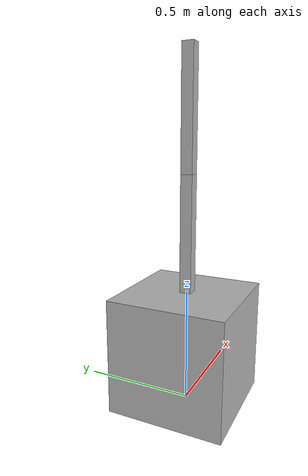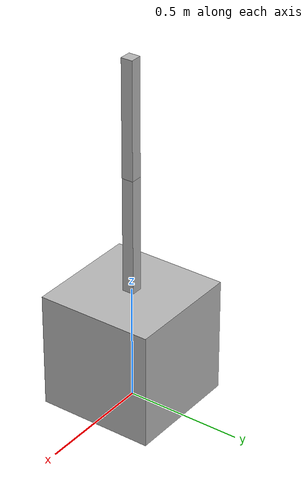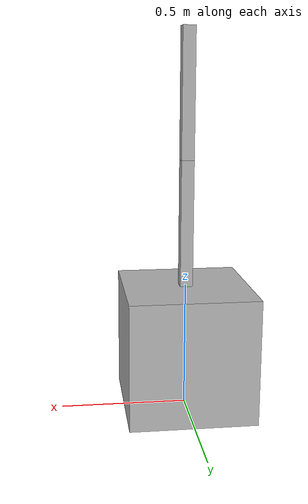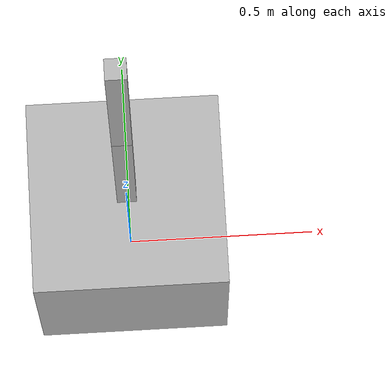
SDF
<?xml version="1.0"?>
<sdf version="1.6">
  <model name="three_link_model">
    <static>false</static>

    <!-- Link 0: 50kg cube -->
    <link name="link0">
      <pose>0 0 0.25 0 0 0</pose>
      <inertial>
        <mass>50</mass>
        <inertia>
          <ixx>2.08</ixx>
          <iyy>2.08</iyy>
          <izz>2.08</izz>
        </inertia>
      </inertial>
      <collision name="collision">
        <geometry>
          <box>
            <size>0.5 0.5 0.5</size>
          </box>
        </geometry>
      </collision>
      <visual name="visual">
        <geometry>
          <box>
            <size>0.5 0.5 0.5</size>
          </box>
        </geometry>
      </visual>
    </link>

    <!-- Link 1: 2kg, 0.5m long -->
    <link name="link1">
      <pose>0 0 0.75 0 0 0</pose>
      <inertial>
        <mass>2</mass>
        <inertia>
          <ixx>0.042</ixx>
          <iyy>0.042</iyy>
          <izz>0.00083</izz>
        </inertia>
      </inertial>
      <collision name="collision">
        <geometry>
          <box>
            <size>0.05 0.05 0.5</size>
          </box>
        </geometry>
      </collision>
      <visual name="visual">
        <geometry>
          <box>
            <size>0.05 0.05 0.5</size>
          </box>
        </geometry>
      </visual>
    </link>

    <!-- Link 2: 2kg, 0.5m long -->
    <link name="link2">
      <pose>0 0 1.25 0 0 0</pose>
      <inertial>
        <mass>2</mass>
        <inertia>
          <ixx>0.042</ixx>
          <iyy>0.042</iyy>
          <izz>0.00083</izz>
        </inertia>
      </inertial>
      <collision name="collision">
        <geometry>
          <box>
            <size>0.05 0.05 0.5</size>
          </box>
        </geometry>
      </collision>
      <visual name="visual">
        <geometry>
          <box>
            <size>0.05 0.05 0.5</size>
          </box>
        </geometry>
      </visual>
    </link>

    <!-- Revolute joint between link0 and link1 -->
    <joint name="joint0" type="revolute">
      <pose>0 0 -0.25 -1.5707 0 0</pose> <!-- at top of link0 -->
      <parent>link0</parent>
      <child>link1</child>
      <axis>
        <xyz>0 0 1</xyz>
        <limit>
          <lower>-1.57</lower>
          <upper>1.57</upper>
          <effort>10</effort>
          <velocity>1.0</velocity>
        </limit>
        <dynamics>
          <damping>0.1</damping>
        </dynamics>
      </axis>
    </joint>

    <!-- Revolute joint between link1 and link2 -->
    <joint name="joint1" type="revolute">
      <pose>0 0 -0.25 0 0 0</pose> <!-- at top of link1 -->
      <parent>link1</parent>
      <child>link2</child>
      <axis>
        <xyz>1 0 0</xyz>
        <limit>
          <lower>-1.57</lower>
          <upper>1.57</upper>
          <effort>10</effort>
          <velocity>1.0</velocity>
        </limit>
        <dynamics>
          <damping>0.1</damping>
        </dynamics>
      </axis>
    </joint>

    <plugin
      filename="gz-sim-joint-controller-system"
      name="gz::sim::systems::JointController">
      <joint_name>joint0</joint_name>
      <topic>/sat_model/joint0</topic>
    </plugin>
    <plugin
      filename="gz-sim-joint-controller-system"
      name="gz::sim::systems::JointController">
      <joint_name>joint1</joint_name>
      <topic>/sat_model/joint1</topic>
    </plugin>
  </model>
</sdf>
